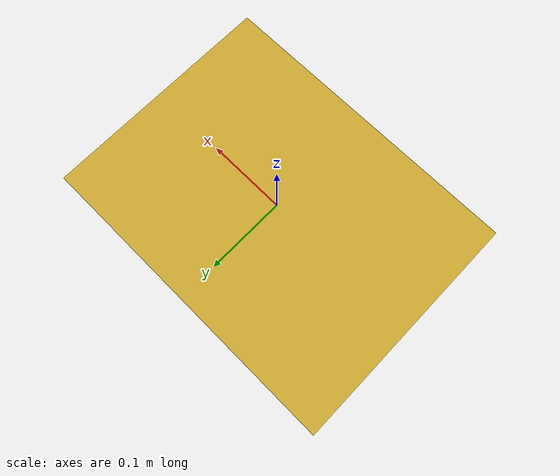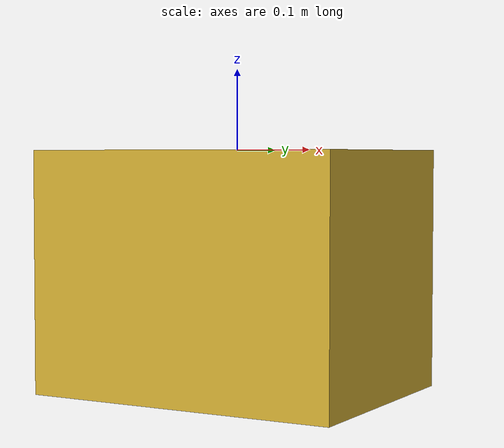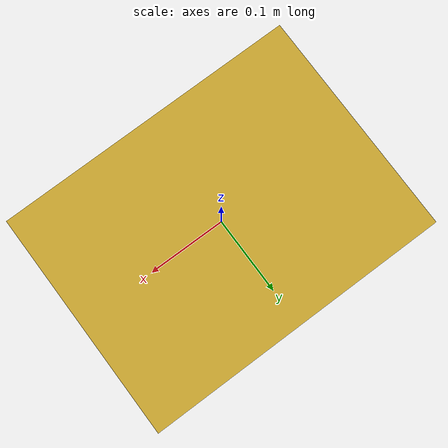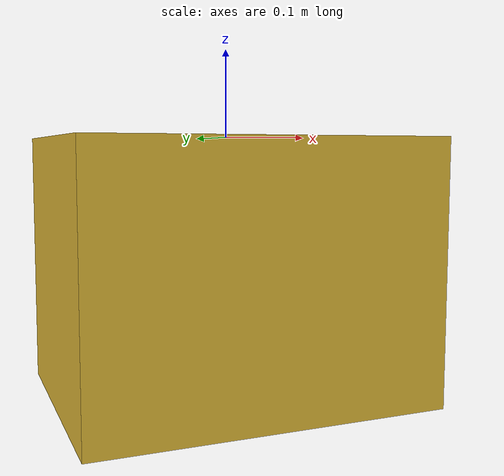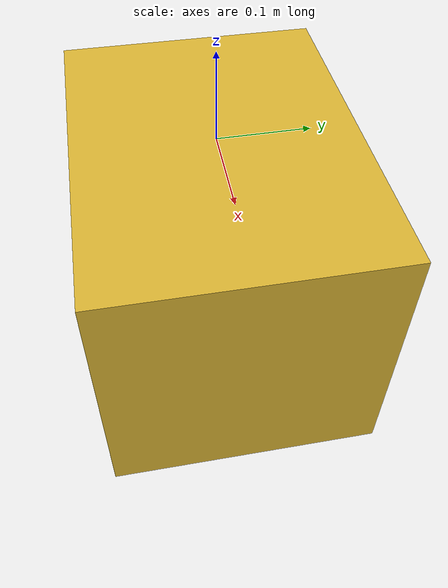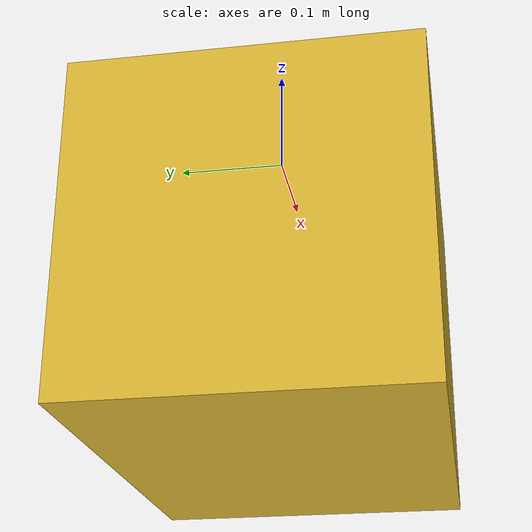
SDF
<?xml version='1.0'?>
<sdf version='1.6'>
  <model name="box">
      <pose>0 0 0 0 0 0</pose>
      <link name="top">
        <inertial>
          <mass>1</mass>
        </inertial>
        <collision name="collision">
          <pose>0 0 -0.15 0 0 0</pose>
          <geometry>
            <box>
              <size>0.4 0.3 0.3</size>
            </box>
          </geometry>

        </collision>
        <visual name="visual">
        <pose>0 0 -0.15 0 0 0</pose>
          <geometry>
            <box>
              <size>0.4 0.3 0.3</size>
            </box>
          </geometry>
          <material>
          <lighting>1</lighting>
          <script>
            <uri>file://media/materials/scripts/gazebo.material</uri>
            <name>Gazebo/Gold</name>
          </script>
        </material>
        </visual>
      </link>
    </model>

</sdf>
